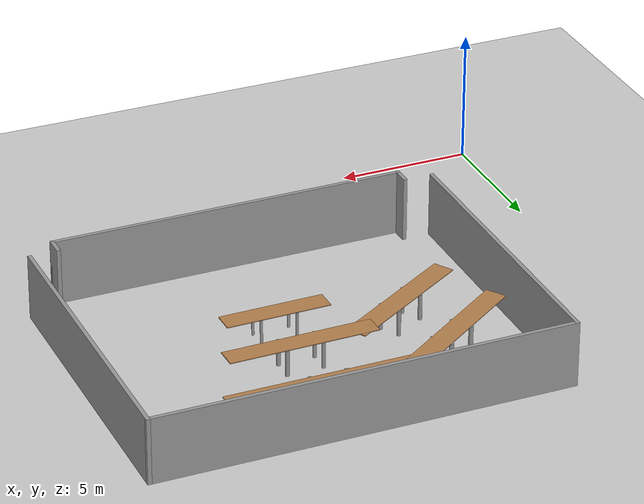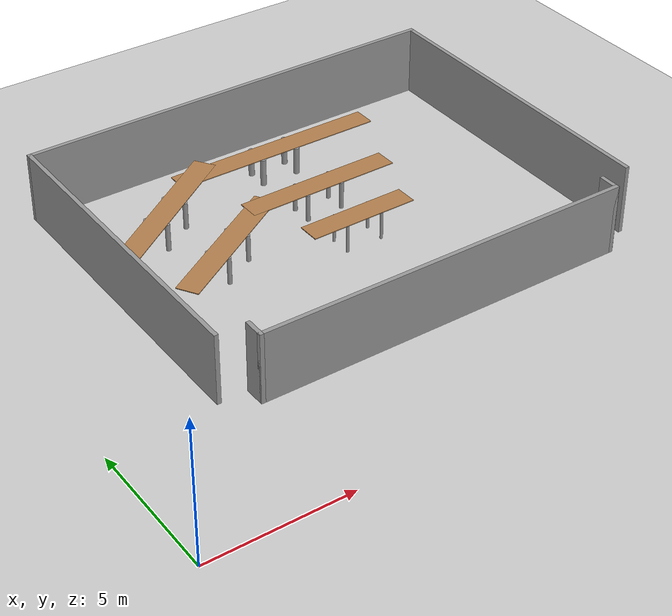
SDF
<sdf version="1.6">
 <world name="default">
  <model name="ground_plane">
   <static>1</static>
   <link name="link">
    <collision name="collision">
     <geometry><plane><normal>0 0 1</normal><size>100 100</size></plane></geometry>
     <surface>
      <contact><collide_bitmask>65535</collide_bitmask></contact>
      <friction><ode><mu>100</mu><mu2>50</mu2></ode></friction>
     </surface>
    </collision>
    <visual name="visual">
     <cast_shadows>0</cast_shadows>
     <geometry><plane><normal>0 0 1</normal><size>100 100</size></plane></geometry>
     <material>
      <script><uri>file://media/materials/scripts/gazebo.material</uri><name>Gazebo/Grey</name></script>
     </material>
    </visual>
   </link>
  </model>
  <model name="106">
   <pose>11.5722 10.6693 0 0 -0 0</pose>
   <link name="Wall_79">
    <collision name="Wall_79_Collision">
     <geometry><box><size>11.668 0.15 2.5</size></box></geometry>
     <pose>0 0 1.25 0 -0 0</pose>
    </collision>
    <visual name="Wall_79_Visual">
     <pose>0 0 1.25 0 -0 0</pose>
     <geometry><box><size>11.668 0.15 2.5</size></box></geometry>
     <material>
      <script><uri>file://media/materials/scripts/gazebo.material</uri><name>Gazebo/Grey</name></script>
      <ambient>1 1 1 1</ambient>
     </material>
     <meta><layer>0</layer></meta>
    </visual>
    <pose>7.759 0.349998 0 0 -0 1.5708</pose>
   </link>
   <link name="Wall_80">
    <collision name="Wall_80_Collision">
     <geometry><box><size>15.668 0.15 2.5</size></box></geometry>
     <pose>0 0 1.25 0 -0 0</pose>
    </collision>
    <visual name="Wall_80_Visual">
     <pose>0 0 1.25 0 -0 0</pose>
     <geometry><box><size>15.668 0.15 2.5</size></box></geometry>
     <material>
      <script><uri>file://media/materials/scripts/gazebo.material</uri><name>Gazebo/Grey</name></script>
      <ambient>1 1 1 1</ambient>
     </material>
     <meta><layer>0</layer></meta>
    </visual>
    <pose>1e-06 6.109 0 0 -0 3.14159</pose>
   </link>
   <link name="Wall_81">
    <collision name="Wall_81_Collision">
     <geometry><box><size>11.668 0.15 2.5</size></box></geometry>
     <pose>0 0 1.25 0 -0 0</pose>
    </collision>
    <visual name="Wall_81_Visual">
     <pose>0 0 1.25 0 -0 0</pose>
     <geometry><box><size>11.668 0.15 2.5</size></box></geometry>
     <material>
      <script><uri>file://media/materials/scripts/gazebo.material</uri><name>Gazebo/Grey</name></script>
      <ambient>1 1 1 1</ambient>
     </material>
     <meta><layer>0</layer></meta>
    </visual>
    <pose>-7.75877 0.349984 0 0 -0 -1.57076</pose>
   </link>
   <link name="Wall_84">
    <collision name="Wall_84_Collision">
     <geometry><box><size>13.532 0.15 2.5</size></box></geometry>
     <pose>0 0 1.25 0 -0 0</pose>
    </collision>
    <visual name="Wall_84_Visual">
     <pose>0 0 1.25 0 -0 0</pose>
     <geometry><box><size>13.532 0.15 2.5</size></box></geometry>
     <material>
      <script><uri>file://media/materials/scripts/gazebo.material</uri><name>Gazebo/Grey</name></script>
      <ambient>1 1 1 1</ambient>
     </material>
     <meta><layer>0</layer></meta>
    </visual>
    <pose>1e-06 -6.109 0 0 -0 0</pose>
   </link>
   <link name="Wall_87">
    <collision name="Wall_87_Collision">
     <geometry><box><size>0.75 0.15 2.5</size></box></geometry>
     <pose>0 0 1.25 0 -0 0</pose>
    </collision>
    <visual name="Wall_87_Visual">
     <pose>0 0 1.25 0 -0 0</pose>
     <geometry><box><size>0.75 0.15 2.5</size></box></geometry>
     <material>
      <script><uri>file://media/materials/scripts/gazebo.material</uri><name>Gazebo/Grey</name></script>
      <ambient>1 1 1 1</ambient>
     </material>
     <meta><layer>0</layer></meta>
    </visual>
    <pose>-6.691 -5.809 0 0 -0 1.5708</pose>
   </link>
   <link name="Wall_89">
    <collision name="Wall_89_Collision">
     <geometry><box><size>0.75 0.15 2.5</size></box></geometry>
     <pose>0 0 1.25 0 -0 0</pose>
    </collision>
    <visual name="Wall_89_Visual">
     <pose>0 0 1.25 0 -0 0</pose>
     <geometry><box><size>0.75 0.15 2.5</size></box></geometry>
     <material>
      <script><uri>file://media/materials/scripts/gazebo.material</uri><name>Gazebo/Grey</name></script>
      <ambient>1 1 1 1</ambient>
     </material>
     <meta><layer>0</layer></meta>
    </visual>
    <pose>6.691 -5.809 0 0 -0 1.5708</pose>
   </link>
   <static>1</static>
  </model>
  <model name="tables">
   <link name="link">
    <inertial>
     <inertia><ixx>0</ixx><ixy>0</ixy><ixz>0</ixz><iyy>0</iyy><iyz>0</iyz><izz>0</izz></inertia>
     <mass>0</mass>
    </inertial>
    <visual name="visual1">
     <pose>0 0 1 0 -0 0</pose>
     <geometry><box><size>7.69024 0.8 0.03</size></box></geometry>
     <material>
      <script><uri>file://media/materials/scripts/gazebo.material</uri><name>Gazebo/Wood</name></script>
      <shader type="pixel"/>
     </material>
    </visual>
    <visual name="front_left_leg">
     <pose>0.68 0.38 0.5 0 -0 0</pose>
     <geometry><cylinder><radius>0.102537</radius><length>1</length></cylinder></geometry>
     <material>
      <script><uri>file://media/materials/scripts/gazebo.material</uri><name>Gazebo/Grey</name></script>
      <shader type="pixel"/>
     </material>
    </visual>
    <visual name="front_right_leg">
     <pose>0.68 -0.38 0.5 0 -0 0</pose>
     <geometry><cylinder><radius>0.102537</radius><length>1</length></cylinder></geometry>
     <material>
      <script><uri>file://media/materials/scripts/gazebo.material</uri><name>Gazebo/Grey</name></script>
      <shader type="pixel"/>
     </material>
    </visual>
    <visual name="back_right_leg">
     <pose>-0.68 -0.38 0.5 0 -0 0</pose>
     <geometry><cylinder><radius>0.102537</radius><length>1</length></cylinder></geometry>
     <material>
      <script><uri>file://media/materials/scripts/gazebo.material</uri><name>Gazebo/Grey</name></script>
      <shader type="pixel"/>
     </material>
    </visual>
    <visual name="back_left_leg">
     <pose>-0.68 0.38 0.5 0 -0 0</pose>
     <geometry><cylinder><radius>0.102537</radius><length>1</length></cylinder></geometry>
     <material>
      <script><uri>file://media/materials/scripts/gazebo.material</uri><name>Gazebo/Grey</name></script>
      <shader type="pixel"/>
     </material>
    </visual>
    <collision name="surface">
     <pose>0 0 1 0 -0 0</pose>
     <geometry><box><size>7.69024 0.8 0.03</size></box></geometry>
     <surface>
      <friction>
       <ode><mu>0.6</mu><mu2>0.6</mu2><fdir1>0 0 0</fdir1><slip1>0</slip1><slip2>0</slip2></ode>
       <torsional>
        <coefficient>1</coefficient>
        <patch_radius>0</patch_radius>
        <surface_radius>0</surface_radius>
        <use_patch_radius>1</use_patch_radius>
        <ode><slip>0</slip></ode>
       </torsional>
      </friction>
      <bounce><restitution_coefficient>0</restitution_coefficient><threshold>1e+06</threshold></bounce>
      <contact>
       <collide_without_contact>0</collide_without_contact>
       <collide_without_contact_bitmask>1</collide_without_contact_bitmask>
       <collide_bitmask>1</collide_bitmask>
       <ode>
        <soft_cfm>0</soft_cfm>
        <soft_erp>0.2</soft_erp>
        <kp>1e+13</kp>
        <kd>1</kd>
        <max_vel>0.01</max_vel>
        <min_depth>0</min_depth>
       </ode>
       <bullet>
        <split_impulse>1</split_impulse>
        <split_impulse_penetration_threshold>-0.01</split_impulse_penetration_threshold>
        <soft_cfm>0</soft_cfm>
        <soft_erp>0.2</soft_erp>
        <kp>1e+13</kp>
        <kd>1</kd>
       </bullet>
      </contact>
     </surface>
    </collision>
    <collision name="front_left_leg">
     <pose>0.68 0.38 0.5 0 -0 0</pose>
     <geometry><cylinder><radius>0.102537</radius><length>1</length></cylinder></geometry>
     <surface>
      <friction>
       <ode><mu>1</mu><mu2>1</mu2><fdir1>0 0 0</fdir1><slip1>0</slip1><slip2>0</slip2></ode>
       <torsional>
        <coefficient>1</coefficient>
        <patch_radius>0</patch_radius>
        <surface_radius>0</surface_radius>
        <use_patch_radius>1</use_patch_radius>
        <ode><slip>0</slip></ode>
       </torsional>
      </friction>
      <bounce><restitution_coefficient>0</restitution_coefficient><threshold>1e+06</threshold></bounce>
      <contact>
       <collide_without_contact>0</collide_without_contact>
       <collide_without_contact_bitmask>1</collide_without_contact_bitmask>
       <collide_bitmask>1</collide_bitmask>
       <ode>
        <soft_cfm>0</soft_cfm>
        <soft_erp>0.2</soft_erp>
        <kp>1e+13</kp>
        <kd>1</kd>
        <max_vel>0.01</max_vel>
        <min_depth>0</min_depth>
       </ode>
       <bullet>
        <split_impulse>1</split_impulse>
        <split_impulse_penetration_threshold>-0.01</split_impulse_penetration_threshold>
        <soft_cfm>0</soft_cfm>
        <soft_erp>0.2</soft_erp>
        <kp>1e+13</kp>
        <kd>1</kd>
       </bullet>
      </contact>
     </surface>
    </collision>
    <collision name="front_right_leg">
     <pose>0.68 -0.38 0.5 0 -0 0</pose>
     <geometry><cylinder><radius>0.102537</radius><length>1</length></cylinder></geometry>
     <surface>
      <friction>
       <ode><mu>1</mu><mu2>1</mu2><fdir1>0 0 0</fdir1><slip1>0</slip1><slip2>0</slip2></ode>
       <torsional>
        <coefficient>1</coefficient>
        <patch_radius>0</patch_radius>
        <surface_radius>0</surface_radius>
        <use_patch_radius>1</use_patch_radius>
        <ode><slip>0</slip></ode>
       </torsional>
      </friction>
      <bounce><restitution_coefficient>0</restitution_coefficient><threshold>1e+06</threshold></bounce>
      <contact>
       <collide_without_contact>0</collide_without_contact>
       <collide_without_contact_bitmask>1</collide_without_contact_bitmask>
       <collide_bitmask>1</collide_bitmask>
       <ode>
        <soft_cfm>0</soft_cfm>
        <soft_erp>0.2</soft_erp>
        <kp>1e+13</kp>
        <kd>1</kd>
        <max_vel>0.01</max_vel>
        <min_depth>0</min_depth>
       </ode>
       <bullet>
        <split_impulse>1</split_impulse>
        <split_impulse_penetration_threshold>-0.01</split_impulse_penetration_threshold>
        <soft_cfm>0</soft_cfm>
        <soft_erp>0.2</soft_erp>
        <kp>1e+13</kp>
        <kd>1</kd>
       </bullet>
      </contact>
     </surface>
    </collision>
    <collision name="back_right_leg">
     <pose>-0.68 -0.38 0.5 0 -0 0</pose>
     <geometry><cylinder><radius>0.102537</radius><length>1</length></cylinder></geometry>
     <surface>
      <friction>
       <ode><mu>1</mu><mu2>1</mu2><fdir1>0 0 0</fdir1><slip1>0</slip1><slip2>0</slip2></ode>
       <torsional>
        <coefficient>1</coefficient>
        <patch_radius>0</patch_radius>
        <surface_radius>0</surface_radius>
        <use_patch_radius>1</use_patch_radius>
        <ode><slip>0</slip></ode>
       </torsional>
      </friction>
      <bounce><restitution_coefficient>0</restitution_coefficient><threshold>1e+06</threshold></bounce>
      <contact>
       <collide_without_contact>0</collide_without_contact>
       <collide_without_contact_bitmask>1</collide_without_contact_bitmask>
       <collide_bitmask>1</collide_bitmask>
       <ode>
        <soft_cfm>0</soft_cfm>
        <soft_erp>0.2</soft_erp>
        <kp>1e+13</kp>
        <kd>1</kd>
        <max_vel>0.01</max_vel>
        <min_depth>0</min_depth>
       </ode>
       <bullet>
        <split_impulse>1</split_impulse>
        <split_impulse_penetration_threshold>-0.01</split_impulse_penetration_threshold>
        <soft_cfm>0</soft_cfm>
        <soft_erp>0.2</soft_erp>
        <kp>1e+13</kp>
        <kd>1</kd>
       </bullet>
      </contact>
     </surface>
    </collision>
    <collision name="back_left_leg">
     <pose>-0.68 0.38 0.5 0 -0 0</pose>
     <geometry><cylinder><radius>0.102537</radius><length>1</length></cylinder></geometry>
     <surface>
      <friction>
       <ode><mu>1</mu><mu2>1</mu2><fdir1>0 0 0</fdir1><slip1>0</slip1><slip2>0</slip2></ode>
       <torsional>
        <coefficient>1</coefficient>
        <patch_radius>0</patch_radius>
        <surface_radius>0</surface_radius>
        <use_patch_radius>1</use_patch_radius>
        <ode><slip>0</slip></ode>
       </torsional>
      </friction>
      <bounce><restitution_coefficient>0</restitution_coefficient><threshold>1e+06</threshold></bounce>
      <contact>
       <collide_without_contact>0</collide_without_contact>
       <collide_without_contact_bitmask>1</collide_without_contact_bitmask>
       <collide_bitmask>1</collide_bitmask>
       <ode>
        <soft_cfm>0</soft_cfm>
        <soft_erp>0.2</soft_erp>
        <kp>1e+13</kp>
        <kd>1</kd>
        <max_vel>0.01</max_vel>
        <min_depth>0</min_depth>
       </ode>
       <bullet>
        <split_impulse>1</split_impulse>
        <split_impulse_penetration_threshold>-0.01</split_impulse_penetration_threshold>
        <soft_cfm>0</soft_cfm>
        <soft_erp>0.2</soft_erp>
        <kp>1e+13</kp>
        <kd>1</kd>
       </bullet>
      </contact>
     </surface>
    </collision>
   </link>
   <link name="link_clone_clone">
    <inertial>
     <inertia><ixx>0</ixx><ixy>0</ixy><ixz>0</ixz><iyy>0</iyy><iyz>0</iyz><izz>0</izz></inertia>
     <mass>0</mass>
    </inertial>
    <pose>-5.01516 -1.24723 0 0 -0 0.606932</pose>
    <visual name="back_right_leg">
     <pose>-0.68 -0.38 0.5 0 -0 0</pose>
     <geometry><cylinder><radius>0.0838342</radius><length>1</length></cylinder></geometry>
     <material>
      <script><uri>file://media/materials/scripts/gazebo.material</uri><name>Gazebo/Grey</name></script>
      <shader type="pixel"/>
     </material>
    </visual>
    <visual name="back_left_leg">
     <pose>-0.68 0.38 0.5 0 -0 0</pose>
     <geometry><cylinder><radius>0.0838342</radius><length>1</length></cylinder></geometry>
     <material>
      <script><uri>file://media/materials/scripts/gazebo.material</uri><name>Gazebo/Grey</name></script>
      <shader type="pixel"/>
     </material>
    </visual>
    <visual name="front_right_leg">
     <pose>0.68 -0.38 0.5 0 -0 0</pose>
     <geometry><cylinder><radius>0.0838342</radius><length>1</length></cylinder></geometry>
     <material>
      <script><uri>file://media/materials/scripts/gazebo.material</uri><name>Gazebo/Grey</name></script>
      <shader type="pixel"/>
     </material>
    </visual>
    <visual name="front_left_leg">
     <pose>0.68 0.38 0.5 0 -0 0</pose>
     <geometry><cylinder><radius>0.0838342</radius><length>1</length></cylinder></geometry>
     <material>
      <script><uri>file://media/materials/scripts/gazebo.material</uri><name>Gazebo/Grey</name></script>
      <shader type="pixel"/>
     </material>
    </visual>
    <visual name="visual1">
     <pose>0 0 1 0 -0 0</pose>
     <geometry><box><size>6.28754 0.8 0.03</size></box></geometry>
     <material>
      <script><uri>file://media/materials/scripts/gazebo.material</uri><name>Gazebo/Wood</name></script>
      <shader type="pixel"/>
     </material>
    </visual>
    <collision name="surface">
     <pose>0 0 1 0 -0 0</pose>
     <geometry><box><size>6.28754 0.8 0.03</size></box></geometry>
     <surface>
      <friction>
       <ode><mu>1</mu><mu2>1</mu2><fdir1>0 0 0</fdir1><slip1>0</slip1><slip2>0</slip2></ode>
       <torsional>
        <coefficient>1</coefficient>
        <patch_radius>0</patch_radius>
        <surface_radius>0</surface_radius>
        <use_patch_radius>1</use_patch_radius>
        <ode><slip>0</slip></ode>
       </torsional>
      </friction>
      <bounce><restitution_coefficient>0</restitution_coefficient><threshold>1e+06</threshold></bounce>
      <contact>
       <collide_without_contact>0</collide_without_contact>
       <collide_without_contact_bitmask>1</collide_without_contact_bitmask>
       <collide_bitmask>1</collide_bitmask>
       <ode>
        <soft_cfm>0</soft_cfm>
        <soft_erp>0.2</soft_erp>
        <kp>1e+13</kp>
        <kd>1</kd>
        <max_vel>0.01</max_vel>
        <min_depth>0</min_depth>
       </ode>
       <bullet>
        <split_impulse>1</split_impulse>
        <split_impulse_penetration_threshold>-0.01</split_impulse_penetration_threshold>
        <soft_cfm>0</soft_cfm>
        <soft_erp>0.2</soft_erp>
        <kp>1e+13</kp>
        <kd>1</kd>
       </bullet>
      </contact>
     </surface>
    </collision>
    <collision name="front_left_leg_0">
     <pose>0.68 0.38 0.5 0 -0 0</pose>
     <geometry><cylinder><radius>0.083834</radius><length>1</length></cylinder></geometry>
     <surface>
      <friction>
       <ode><mu>1</mu><mu2>1</mu2><fdir1>0 0 0</fdir1><slip1>0</slip1><slip2>0</slip2></ode>
       <torsional>
        <coefficient>1</coefficient>
        <patch_radius>0</patch_radius>
        <surface_radius>0</surface_radius>
        <use_patch_radius>1</use_patch_radius>
        <ode><slip>0</slip></ode>
       </torsional>
      </friction>
      <bounce><restitution_coefficient>0</restitution_coefficient><threshold>1e+06</threshold></bounce>
      <contact>
       <collide_without_contact>0</collide_without_contact>
       <collide_without_contact_bitmask>1</collide_without_contact_bitmask>
       <collide_bitmask>1</collide_bitmask>
       <ode>
        <soft_cfm>0</soft_cfm>
        <soft_erp>0.2</soft_erp>
        <kp>1e+13</kp>
        <kd>1</kd>
        <max_vel>0.01</max_vel>
        <min_depth>0</min_depth>
       </ode>
       <bullet>
        <split_impulse>1</split_impulse>
        <split_impulse_penetration_threshold>-0.01</split_impulse_penetration_threshold>
        <soft_cfm>0</soft_cfm>
        <soft_erp>0.2</soft_erp>
        <kp>1e+13</kp>
        <kd>1</kd>
       </bullet>
      </contact>
     </surface>
    </collision>
    <collision name="front_right_leg_0">
     <pose>0.68 -0.38 0.5 0 -0 0</pose>
     <geometry><cylinder><radius>0.083834</radius><length>1</length></cylinder></geometry>
     <surface>
      <friction>
       <ode><mu>1</mu><mu2>1</mu2><fdir1>0 0 0</fdir1><slip1>0</slip1><slip2>0</slip2></ode>
       <torsional>
        <coefficient>1</coefficient>
        <patch_radius>0</patch_radius>
        <surface_radius>0</surface_radius>
        <use_patch_radius>1</use_patch_radius>
        <ode><slip>0</slip></ode>
       </torsional>
      </friction>
      <bounce><restitution_coefficient>0</restitution_coefficient><threshold>1e+06</threshold></bounce>
      <contact>
       <collide_without_contact>0</collide_without_contact>
       <collide_without_contact_bitmask>1</collide_without_contact_bitmask>
       <collide_bitmask>1</collide_bitmask>
       <ode>
        <soft_cfm>0</soft_cfm>
        <soft_erp>0.2</soft_erp>
        <kp>1e+13</kp>
        <kd>1</kd>
        <max_vel>0.01</max_vel>
        <min_depth>0</min_depth>
       </ode>
       <bullet>
        <split_impulse>1</split_impulse>
        <split_impulse_penetration_threshold>-0.01</split_impulse_penetration_threshold>
        <soft_cfm>0</soft_cfm>
        <soft_erp>0.2</soft_erp>
        <kp>1e+13</kp>
        <kd>1</kd>
       </bullet>
      </contact>
     </surface>
    </collision>
    <collision name="back_left_leg_0">
     <pose>-0.68 0.38 0.5 0 -0 0</pose>
     <geometry><cylinder><radius>0.083834</radius><length>1</length></cylinder></geometry>
     <surface>
      <friction>
       <ode><mu>1</mu><mu2>1</mu2><fdir1>0 0 0</fdir1><slip1>0</slip1><slip2>0</slip2></ode>
       <torsional>
        <coefficient>1</coefficient>
        <patch_radius>0</patch_radius>
        <surface_radius>0</surface_radius>
        <use_patch_radius>1</use_patch_radius>
        <ode><slip>0</slip></ode>
       </torsional>
      </friction>
      <bounce><restitution_coefficient>0</restitution_coefficient><threshold>1e+06</threshold></bounce>
      <contact>
       <collide_without_contact>0</collide_without_contact>
       <collide_without_contact_bitmask>1</collide_without_contact_bitmask>
       <collide_bitmask>1</collide_bitmask>
       <ode>
        <soft_cfm>0</soft_cfm>
        <soft_erp>0.2</soft_erp>
        <kp>1e+13</kp>
        <kd>1</kd>
        <max_vel>0.01</max_vel>
        <min_depth>0</min_depth>
       </ode>
       <bullet>
        <split_impulse>1</split_impulse>
        <split_impulse_penetration_threshold>-0.01</split_impulse_penetration_threshold>
        <soft_cfm>0</soft_cfm>
        <soft_erp>0.2</soft_erp>
        <kp>1e+13</kp>
        <kd>1</kd>
       </bullet>
      </contact>
     </surface>
    </collision>
    <collision name="back_right_leg_0">
     <pose>-0.68 -0.38 0.5 0 -0 0</pose>
     <geometry><cylinder><radius>0.083834</radius><length>1</length></cylinder></geometry>
     <surface>
      <friction>
       <ode><mu>1</mu><mu2>1</mu2><fdir1>0 0 0</fdir1><slip1>0</slip1><slip2>0</slip2></ode>
       <torsional>
        <coefficient>1</coefficient>
        <patch_radius>0</patch_radius>
        <surface_radius>0</surface_radius>
        <use_patch_radius>1</use_patch_radius>
        <ode><slip>0</slip></ode>
       </torsional>
      </friction>
      <bounce><restitution_coefficient>0</restitution_coefficient><threshold>1e+06</threshold></bounce>
      <contact>
       <collide_without_contact>0</collide_without_contact>
       <collide_without_contact_bitmask>1</collide_without_contact_bitmask>
       <collide_bitmask>1</collide_bitmask>
       <ode>
        <soft_cfm>0</soft_cfm>
        <soft_erp>0.2</soft_erp>
        <kp>1e+13</kp>
        <kd>1</kd>
        <max_vel>0.01</max_vel>
        <min_depth>0</min_depth>
       </ode>
       <bullet>
        <split_impulse>1</split_impulse>
        <split_impulse_penetration_threshold>-0.01</split_impulse_penetration_threshold>
        <soft_cfm>0</soft_cfm>
        <soft_erp>0.2</soft_erp>
        <kp>1e+13</kp>
        <kd>1</kd>
       </bullet>
      </contact>
     </surface>
    </collision>
   </link>
   <link name="link_clone_clone_0">
    <inertial>
     <inertia><ixx>0</ixx><ixy>0</ixy><ixz>0</ixz><iyy>0</iyy><iyz>0</iyz><izz>0</izz></inertia>
     <mass>0</mass>
    </inertial>
    <pose>0.01366 -2.70424 0 0 -0 0.010098</pose>
    <visual name="back_right_leg">
     <pose>-0.68 -0.38 0.5 0 -0 0</pose>
     <geometry><cylinder><radius>0.0748358</radius><length>1</length></cylinder></geometry>
     <material>
      <script><uri>file://media/materials/scripts/gazebo.material</uri><name>Gazebo/Grey</name></script>
      <shader type="pixel"/>
     </material>
    </visual>
    <visual name="back_left_leg">
     <pose>-0.68 0.38 0.5 0 -0 0</pose>
     <geometry><cylinder><radius>0.0748358</radius><length>1</length></cylinder></geometry>
     <material>
      <script><uri>file://media/materials/scripts/gazebo.material</uri><name>Gazebo/Grey</name></script>
      <shader type="pixel"/>
     </material>
    </visual>
    <visual name="front_left_leg">
     <pose>0.68 0.38 0.5 0 -0 0</pose>
     <geometry><cylinder><radius>0.0748358</radius><length>1</length></cylinder></geometry>
     <material>
      <script><uri>file://media/materials/scripts/gazebo.material</uri><name>Gazebo/Grey</name></script>
      <shader type="pixel"/>
     </material>
    </visual>
    <visual name="front_right_leg">
     <pose>0.68 -0.38 0.5 0 -0 0</pose>
     <geometry><cylinder><radius>0.0748358</radius><length>1</length></cylinder></geometry>
     <material>
      <script><uri>file://media/materials/scripts/gazebo.material</uri><name>Gazebo/Grey</name></script>
      <shader type="pixel"/>
     </material>
    </visual>
    <visual name="visual1">
     <pose>0 0 1 0 -0 0</pose>
     <geometry><box><size>5.60463 0.8 0.03</size></box></geometry>
     <material>
      <script><uri>file://media/materials/scripts/gazebo.material</uri><name>Gazebo/Wood</name></script>
      <shader type="pixel"/>
     </material>
    </visual>
    <collision name="surface">
     <pose>0 0 1 0 -0 0</pose>
     <geometry><box><size>5.60463 0.8 0.03</size></box></geometry>
     <surface>
      <friction>
       <ode><mu>1</mu><mu2>1</mu2><fdir1>0 0 0</fdir1><slip1>0</slip1><slip2>0</slip2></ode>
       <torsional>
        <coefficient>1</coefficient>
        <patch_radius>0</patch_radius>
        <surface_radius>0</surface_radius>
        <use_patch_radius>1</use_patch_radius>
        <ode><slip>0</slip></ode>
       </torsional>
      </friction>
      <bounce><restitution_coefficient>0</restitution_coefficient><threshold>1e+06</threshold></bounce>
      <contact>
       <collide_without_contact>0</collide_without_contact>
       <collide_without_contact_bitmask>1</collide_without_contact_bitmask>
       <collide_bitmask>1</collide_bitmask>
       <ode>
        <soft_cfm>0</soft_cfm>
        <soft_erp>0.2</soft_erp>
        <kp>1e+13</kp>
        <kd>1</kd>
        <max_vel>0.01</max_vel>
        <min_depth>0</min_depth>
       </ode>
       <bullet>
        <split_impulse>1</split_impulse>
        <split_impulse_penetration_threshold>-0.01</split_impulse_penetration_threshold>
        <soft_cfm>0</soft_cfm>
        <soft_erp>0.2</soft_erp>
        <kp>1e+13</kp>
        <kd>1</kd>
       </bullet>
      </contact>
     </surface>
    </collision>
    <collision name="front_left_leg_0">
     <pose>0.68 0.38 0.5 0 -0 0</pose>
     <geometry><cylinder><radius>0.074836</radius><length>1</length></cylinder></geometry>
     <surface>
      <friction>
       <ode><mu>1</mu><mu2>1</mu2><fdir1>0 0 0</fdir1><slip1>0</slip1><slip2>0</slip2></ode>
       <torsional>
        <coefficient>1</coefficient>
        <patch_radius>0</patch_radius>
        <surface_radius>0</surface_radius>
        <use_patch_radius>1</use_patch_radius>
        <ode><slip>0</slip></ode>
       </torsional>
      </friction>
      <bounce><restitution_coefficient>0</restitution_coefficient><threshold>1e+06</threshold></bounce>
      <contact>
       <collide_without_contact>0</collide_without_contact>
       <collide_without_contact_bitmask>1</collide_without_contact_bitmask>
       <collide_bitmask>1</collide_bitmask>
       <ode>
        <soft_cfm>0</soft_cfm>
        <soft_erp>0.2</soft_erp>
        <kp>1e+13</kp>
        <kd>1</kd>
        <max_vel>0.01</max_vel>
        <min_depth>0</min_depth>
       </ode>
       <bullet>
        <split_impulse>1</split_impulse>
        <split_impulse_penetration_threshold>-0.01</split_impulse_penetration_threshold>
        <soft_cfm>0</soft_cfm>
        <soft_erp>0.2</soft_erp>
        <kp>1e+13</kp>
        <kd>1</kd>
       </bullet>
      </contact>
     </surface>
    </collision>
    <collision name="back_left_leg_0">
     <pose>-0.68 0.38 0.5 0 -0 0</pose>
     <geometry><cylinder><radius>0.074836</radius><length>1</length></cylinder></geometry>
     <surface>
      <friction>
       <ode><mu>1</mu><mu2>1</mu2><fdir1>0 0 0</fdir1><slip1>0</slip1><slip2>0</slip2></ode>
       <torsional>
        <coefficient>1</coefficient>
        <patch_radius>0</patch_radius>
        <surface_radius>0</surface_radius>
        <use_patch_radius>1</use_patch_radius>
        <ode><slip>0</slip></ode>
       </torsional>
      </friction>
      <bounce><restitution_coefficient>0</restitution_coefficient><threshold>1e+06</threshold></bounce>
      <contact>
       <collide_without_contact>0</collide_without_contact>
       <collide_without_contact_bitmask>1</collide_without_contact_bitmask>
       <collide_bitmask>1</collide_bitmask>
       <ode>
        <soft_cfm>0</soft_cfm>
        <soft_erp>0.2</soft_erp>
        <kp>1e+13</kp>
        <kd>1</kd>
        <max_vel>0.01</max_vel>
        <min_depth>0</min_depth>
       </ode>
       <bullet>
        <split_impulse>1</split_impulse>
        <split_impulse_penetration_threshold>-0.01</split_impulse_penetration_threshold>
        <soft_cfm>0</soft_cfm>
        <soft_erp>0.2</soft_erp>
        <kp>1e+13</kp>
        <kd>1</kd>
       </bullet>
      </contact>
     </surface>
    </collision>
    <collision name="front_right_leg_0">
     <pose>0.68 -0.38 0.5 0 -0 0</pose>
     <geometry><cylinder><radius>0.074836</radius><length>1</length></cylinder></geometry>
     <surface>
      <friction>
       <ode><mu>1</mu><mu2>1</mu2><fdir1>0 0 0</fdir1><slip1>0</slip1><slip2>0</slip2></ode>
       <torsional>
        <coefficient>1</coefficient>
        <patch_radius>0</patch_radius>
        <surface_radius>0</surface_radius>
        <use_patch_radius>1</use_patch_radius>
        <ode><slip>0</slip></ode>
       </torsional>
      </friction>
      <bounce><restitution_coefficient>0</restitution_coefficient><threshold>1e+06</threshold></bounce>
      <contact>
       <collide_without_contact>0</collide_without_contact>
       <collide_without_contact_bitmask>1</collide_without_contact_bitmask>
       <collide_bitmask>1</collide_bitmask>
       <ode>
        <soft_cfm>0</soft_cfm>
        <soft_erp>0.2</soft_erp>
        <kp>1e+13</kp>
        <kd>1</kd>
        <max_vel>0.01</max_vel>
        <min_depth>0</min_depth>
       </ode>
       <bullet>
        <split_impulse>1</split_impulse>
        <split_impulse_penetration_threshold>-0.01</split_impulse_penetration_threshold>
        <soft_cfm>0</soft_cfm>
        <soft_erp>0.2</soft_erp>
        <kp>1e+13</kp>
        <kd>1</kd>
       </bullet>
      </contact>
     </surface>
    </collision>
    <collision name="back_right_leg_0">
     <pose>-0.68 -0.38 0.5 0 -0 0</pose>
     <geometry><cylinder><radius>0.074836</radius><length>1</length></cylinder></geometry>
     <surface>
      <friction>
       <ode><mu>1</mu><mu2>1</mu2><fdir1>0 0 0</fdir1><slip1>0</slip1><slip2>0</slip2></ode>
       <torsional>
        <coefficient>1</coefficient>
        <patch_radius>0</patch_radius>
        <surface_radius>0</surface_radius>
        <use_patch_radius>1</use_patch_radius>
        <ode><slip>0</slip></ode>
       </torsional>
      </friction>
      <bounce><restitution_coefficient>0</restitution_coefficient><threshold>1e+06</threshold></bounce>
      <contact>
       <collide_without_contact>0</collide_without_contact>
       <collide_without_contact_bitmask>1</collide_without_contact_bitmask>
       <collide_bitmask>1</collide_bitmask>
       <ode>
        <soft_cfm>0</soft_cfm>
        <soft_erp>0.2</soft_erp>
        <kp>1e+13</kp>
        <kd>1</kd>
        <max_vel>0.01</max_vel>
        <min_depth>0</min_depth>
       </ode>
       <bullet>
        <split_impulse>1</split_impulse>
        <split_impulse_penetration_threshold>-0.01</split_impulse_penetration_threshold>
        <soft_cfm>0</soft_cfm>
        <soft_erp>0.2</soft_erp>
        <kp>1e+13</kp>
        <kd>1</kd>
       </bullet>
      </contact>
     </surface>
    </collision>
   </link>
   <link name="link_clone_clone_0_clone_0">
    <inertial>
     <inertia><ixx>0</ixx><ixy>0</ixy><ixz>0</ixz><iyy>0</iyy><iyz>0</iyz><izz>0</izz></inertia>
     <mass>0</mass>
    </inertial>
    <pose>-4.32148 -3.96287 0 0 -0 0.557271</pose>
    <visual name="back_right_leg">
     <pose>-0.68 -0.38 0.5 0 -0 0</pose>
     <geometry><cylinder><radius>0.0748358</radius><length>1</length></cylinder></geometry>
     <material>
      <script><uri>file://media/materials/scripts/gazebo.material</uri><name>Gazebo/Grey</name></script>
      <shader type="pixel"/>
     </material>
    </visual>
    <visual name="back_left_leg">
     <pose>-0.68 0.38 0.5 0 -0 0</pose>
     <geometry><cylinder><radius>0.0748358</radius><length>1</length></cylinder></geometry>
     <material>
      <script><uri>file://media/materials/scripts/gazebo.material</uri><name>Gazebo/Grey</name></script>
      <shader type="pixel"/>
     </material>
    </visual>
    <visual name="front_left_leg">
     <pose>0.68 0.38 0.5 0 -0 0</pose>
     <geometry><cylinder><radius>0.0748358</radius><length>1</length></cylinder></geometry>
     <material>
      <script><uri>file://media/materials/scripts/gazebo.material</uri><name>Gazebo/Grey</name></script>
      <shader type="pixel"/>
     </material>
    </visual>
    <visual name="front_right_leg">
     <pose>0.68 -0.38 0.5 0 -0 0</pose>
     <geometry><cylinder><radius>0.0748358</radius><length>1</length></cylinder></geometry>
     <material>
      <script><uri>file://media/materials/scripts/gazebo.material</uri><name>Gazebo/Grey</name></script>
      <shader type="pixel"/>
     </material>
    </visual>
    <visual name="visual1">
     <pose>0 0 1 0 -0 0</pose>
     <geometry><box><size>5.60463 0.8 0.03</size></box></geometry>
     <material>
      <script><uri>file://media/materials/scripts/gazebo.material</uri><name>Gazebo/Wood</name></script>
      <shader type="pixel"/>
     </material>
    </visual>
    <collision name="surface">
     <pose>0 0 1 0 -0 0</pose>
     <geometry><box><size>5.60463 0.8 0.03</size></box></geometry>
     <surface>
      <friction>
       <ode><mu>1</mu><mu2>1</mu2><fdir1>0 0 0</fdir1><slip1>0</slip1><slip2>0</slip2></ode>
       <torsional>
        <coefficient>1</coefficient>
        <patch_radius>0</patch_radius>
        <surface_radius>0</surface_radius>
        <use_patch_radius>1</use_patch_radius>
        <ode><slip>0</slip></ode>
       </torsional>
      </friction>
      <bounce><restitution_coefficient>0</restitution_coefficient><threshold>1e+06</threshold></bounce>
      <contact>
       <collide_without_contact>0</collide_without_contact>
       <collide_without_contact_bitmask>1</collide_without_contact_bitmask>
       <collide_bitmask>1</collide_bitmask>
       <ode>
        <soft_cfm>0</soft_cfm>
        <soft_erp>0.2</soft_erp>
        <kp>1e+13</kp>
        <kd>1</kd>
        <max_vel>0.01</max_vel>
        <min_depth>0</min_depth>
       </ode>
       <bullet>
        <split_impulse>1</split_impulse>
        <split_impulse_penetration_threshold>-0.01</split_impulse_penetration_threshold>
        <soft_cfm>0</soft_cfm>
        <soft_erp>0.2</soft_erp>
        <kp>1e+13</kp>
        <kd>1</kd>
       </bullet>
      </contact>
     </surface>
    </collision>
    <collision name="front_left_leg_0">
     <pose>0.68 0.38 0.5 0 -0 0</pose>
     <geometry><cylinder><radius>0.074836</radius><length>1</length></cylinder></geometry>
     <surface>
      <friction>
       <ode><mu>1</mu><mu2>1</mu2><fdir1>0 0 0</fdir1><slip1>0</slip1><slip2>0</slip2></ode>
       <torsional>
        <coefficient>1</coefficient>
        <patch_radius>0</patch_radius>
        <surface_radius>0</surface_radius>
        <use_patch_radius>1</use_patch_radius>
        <ode><slip>0</slip></ode>
       </torsional>
      </friction>
      <bounce><restitution_coefficient>0</restitution_coefficient><threshold>1e+06</threshold></bounce>
      <contact>
       <collide_without_contact>0</collide_without_contact>
       <collide_without_contact_bitmask>1</collide_without_contact_bitmask>
       <collide_bitmask>1</collide_bitmask>
       <ode>
        <soft_cfm>0</soft_cfm>
        <soft_erp>0.2</soft_erp>
        <kp>1e+13</kp>
        <kd>1</kd>
        <max_vel>0.01</max_vel>
        <min_depth>0</min_depth>
       </ode>
       <bullet>
        <split_impulse>1</split_impulse>
        <split_impulse_penetration_threshold>-0.01</split_impulse_penetration_threshold>
        <soft_cfm>0</soft_cfm>
        <soft_erp>0.2</soft_erp>
        <kp>1e+13</kp>
        <kd>1</kd>
       </bullet>
      </contact>
     </surface>
    </collision>
    <collision name="back_left_leg_0">
     <pose>-0.68 0.38 0.5 0 -0 0</pose>
     <geometry><cylinder><radius>0.074836</radius><length>1</length></cylinder></geometry>
     <surface>
      <friction>
       <ode><mu>1</mu><mu2>1</mu2><fdir1>0 0 0</fdir1><slip1>0</slip1><slip2>0</slip2></ode>
       <torsional>
        <coefficient>1</coefficient>
        <patch_radius>0</patch_radius>
        <surface_radius>0</surface_radius>
        <use_patch_radius>1</use_patch_radius>
        <ode><slip>0</slip></ode>
       </torsional>
      </friction>
      <bounce><restitution_coefficient>0</restitution_coefficient><threshold>1e+06</threshold></bounce>
      <contact>
       <collide_without_contact>0</collide_without_contact>
       <collide_without_contact_bitmask>1</collide_without_contact_bitmask>
       <collide_bitmask>1</collide_bitmask>
       <ode>
        <soft_cfm>0</soft_cfm>
        <soft_erp>0.2</soft_erp>
        <kp>1e+13</kp>
        <kd>1</kd>
        <max_vel>0.01</max_vel>
        <min_depth>0</min_depth>
       </ode>
       <bullet>
        <split_impulse>1</split_impulse>
        <split_impulse_penetration_threshold>-0.01</split_impulse_penetration_threshold>
        <soft_cfm>0</soft_cfm>
        <soft_erp>0.2</soft_erp>
        <kp>1e+13</kp>
        <kd>1</kd>
       </bullet>
      </contact>
     </surface>
    </collision>
    <collision name="front_right_leg_0">
     <pose>0.68 -0.38 0.5 0 -0 0</pose>
     <geometry><cylinder><radius>0.074836</radius><length>1</length></cylinder></geometry>
     <surface>
      <friction>
       <ode><mu>1</mu><mu2>1</mu2><fdir1>0 0 0</fdir1><slip1>0</slip1><slip2>0</slip2></ode>
       <torsional>
        <coefficient>1</coefficient>
        <patch_radius>0</patch_radius>
        <surface_radius>0</surface_radius>
        <use_patch_radius>1</use_patch_radius>
        <ode><slip>0</slip></ode>
       </torsional>
      </friction>
      <bounce><restitution_coefficient>0</restitution_coefficient><threshold>1e+06</threshold></bounce>
      <contact>
       <collide_without_contact>0</collide_without_contact>
       <collide_without_contact_bitmask>1</collide_without_contact_bitmask>
       <collide_bitmask>1</collide_bitmask>
       <ode>
        <soft_cfm>0</soft_cfm>
        <soft_erp>0.2</soft_erp>
        <kp>1e+13</kp>
        <kd>1</kd>
        <max_vel>0.01</max_vel>
        <min_depth>0</min_depth>
       </ode>
       <bullet>
        <split_impulse>1</split_impulse>
        <split_impulse_penetration_threshold>-0.01</split_impulse_penetration_threshold>
        <soft_cfm>0</soft_cfm>
        <soft_erp>0.2</soft_erp>
        <kp>1e+13</kp>
        <kd>1</kd>
       </bullet>
      </contact>
     </surface>
    </collision>
    <collision name="back_right_leg_0">
     <pose>-0.68 -0.38 0.5 0 -0 0</pose>
     <geometry><cylinder><radius>0.074836</radius><length>1</length></cylinder></geometry>
     <surface>
      <friction>
       <ode><mu>1</mu><mu2>1</mu2><fdir1>0 0 0</fdir1><slip1>0</slip1><slip2>0</slip2></ode>
       <torsional>
        <coefficient>1</coefficient>
        <patch_radius>0</patch_radius>
        <surface_radius>0</surface_radius>
        <use_patch_radius>1</use_patch_radius>
        <ode><slip>0</slip></ode>
       </torsional>
      </friction>
      <bounce><restitution_coefficient>0</restitution_coefficient><threshold>1e+06</threshold></bounce>
      <contact>
       <collide_without_contact>0</collide_without_contact>
       <collide_without_contact_bitmask>1</collide_without_contact_bitmask>
       <collide_bitmask>1</collide_bitmask>
       <ode>
        <soft_cfm>0</soft_cfm>
        <soft_erp>0.2</soft_erp>
        <kp>1e+13</kp>
        <kd>1</kd>
        <max_vel>0.01</max_vel>
        <min_depth>0</min_depth>
       </ode>
       <bullet>
        <split_impulse>1</split_impulse>
        <split_impulse_penetration_threshold>-0.01</split_impulse_penetration_threshold>
        <soft_cfm>0</soft_cfm>
        <soft_erp>0.2</soft_erp>
        <kp>1e+13</kp>
        <kd>1</kd>
       </bullet>
      </contact>
     </surface>
    </collision>
   </link>
   <link name="link_clone_clone_0_clone_1">
    <inertial>
     <inertia><ixx>0</ixx><ixy>0</ixy><ixz>0</ixz><iyy>0</iyy><iyz>0</iyz><izz>0</izz></inertia>
     <mass>0</mass>
    </inertial>
    <pose>0.045806 -4.93821 0 0 -0 0.010098</pose>
    <visual name="back_right_leg">
     <pose>-0.68 -0.38 0.5 0 -0 0</pose>
     <geometry><cylinder><radius>0.05252</radius><length>1</length></cylinder></geometry>
     <material>
      <script><uri>file://media/materials/scripts/gazebo.material</uri><name>Gazebo/Grey</name></script>
      <shader type="pixel"/>
     </material>
    </visual>
    <visual name="back_left_leg">
     <pose>-0.68 0.38 0.5 0 -0 0</pose>
     <geometry><cylinder><radius>0.05252</radius><length>1</length></cylinder></geometry>
     <material>
      <script><uri>file://media/materials/scripts/gazebo.material</uri><name>Gazebo/Grey</name></script>
      <shader type="pixel"/>
     </material>
    </visual>
    <visual name="front_left_leg">
     <pose>0.68 0.38 0.5 0 -0 0</pose>
     <geometry><cylinder><radius>0.05252</radius><length>1</length></cylinder></geometry>
     <material>
      <script><uri>file://media/materials/scripts/gazebo.material</uri><name>Gazebo/Grey</name></script>
      <shader type="pixel"/>
     </material>
    </visual>
    <visual name="front_right_leg">
     <pose>0.68 -0.38 0.5 0 -0 0</pose>
     <geometry><cylinder><radius>0.05252</radius><length>1</length></cylinder></geometry>
     <material>
      <script><uri>file://media/materials/scripts/gazebo.material</uri><name>Gazebo/Grey</name></script>
      <shader type="pixel"/>
     </material>
    </visual>
    <visual name="visual1">
     <pose>0 0 1 0 -0 0</pose>
     <geometry><box><size>3.93335 0.8 0.03</size></box></geometry>
     <material>
      <script><uri>file://media/materials/scripts/gazebo.material</uri><name>Gazebo/Wood</name></script>
      <shader type="pixel"/>
     </material>
    </visual>
    <collision name="surface">
     <pose>0 0 1 0 -0 0</pose>
     <geometry><box><size>3.93335 0.8 0.03</size></box></geometry>
     <surface>
      <friction>
       <ode><mu>1</mu><mu2>1</mu2><fdir1>0 0 0</fdir1><slip1>0</slip1><slip2>0</slip2></ode>
       <torsional>
        <coefficient>1</coefficient>
        <patch_radius>0</patch_radius>
        <surface_radius>0</surface_radius>
        <use_patch_radius>1</use_patch_radius>
        <ode><slip>0</slip></ode>
       </torsional>
      </friction>
      <bounce><restitution_coefficient>0</restitution_coefficient><threshold>1e+06</threshold></bounce>
      <contact>
       <collide_without_contact>0</collide_without_contact>
       <collide_without_contact_bitmask>1</collide_without_contact_bitmask>
       <collide_bitmask>1</collide_bitmask>
       <ode>
        <soft_cfm>0</soft_cfm>
        <soft_erp>0.2</soft_erp>
        <kp>1e+13</kp>
        <kd>1</kd>
        <max_vel>0.01</max_vel>
        <min_depth>0</min_depth>
       </ode>
       <bullet>
        <split_impulse>1</split_impulse>
        <split_impulse_penetration_threshold>-0.01</split_impulse_penetration_threshold>
        <soft_cfm>0</soft_cfm>
        <soft_erp>0.2</soft_erp>
        <kp>1e+13</kp>
        <kd>1</kd>
       </bullet>
      </contact>
     </surface>
    </collision>
    <collision name="front_left_leg_0">
     <pose>0.68 0.38 0.5 0 -0 0</pose>
     <geometry><cylinder><radius>0.05252</radius><length>1</length></cylinder></geometry>
     <surface>
      <friction>
       <ode><mu>1</mu><mu2>1</mu2><fdir1>0 0 0</fdir1><slip1>0</slip1><slip2>0</slip2></ode>
       <torsional>
        <coefficient>1</coefficient>
        <patch_radius>0</patch_radius>
        <surface_radius>0</surface_radius>
        <use_patch_radius>1</use_patch_radius>
        <ode><slip>0</slip></ode>
       </torsional>
      </friction>
      <bounce><restitution_coefficient>0</restitution_coefficient><threshold>1e+06</threshold></bounce>
      <contact>
       <collide_without_contact>0</collide_without_contact>
       <collide_without_contact_bitmask>1</collide_without_contact_bitmask>
       <collide_bitmask>1</collide_bitmask>
       <ode>
        <soft_cfm>0</soft_cfm>
        <soft_erp>0.2</soft_erp>
        <kp>1e+13</kp>
        <kd>1</kd>
        <max_vel>0.01</max_vel>
        <min_depth>0</min_depth>
       </ode>
       <bullet>
        <split_impulse>1</split_impulse>
        <split_impulse_penetration_threshold>-0.01</split_impulse_penetration_threshold>
        <soft_cfm>0</soft_cfm>
        <soft_erp>0.2</soft_erp>
        <kp>1e+13</kp>
        <kd>1</kd>
       </bullet>
      </contact>
     </surface>
    </collision>
    <collision name="back_left_leg_0">
     <pose>-0.68 0.38 0.5 0 -0 0</pose>
     <geometry><cylinder><radius>0.05252</radius><length>1</length></cylinder></geometry>
     <surface>
      <friction>
       <ode><mu>1</mu><mu2>1</mu2><fdir1>0 0 0</fdir1><slip1>0</slip1><slip2>0</slip2></ode>
       <torsional>
        <coefficient>1</coefficient>
        <patch_radius>0</patch_radius>
        <surface_radius>0</surface_radius>
        <use_patch_radius>1</use_patch_radius>
        <ode><slip>0</slip></ode>
       </torsional>
      </friction>
      <bounce><restitution_coefficient>0</restitution_coefficient><threshold>1e+06</threshold></bounce>
      <contact>
       <collide_without_contact>0</collide_without_contact>
       <collide_without_contact_bitmask>1</collide_without_contact_bitmask>
       <collide_bitmask>1</collide_bitmask>
       <ode>
        <soft_cfm>0</soft_cfm>
        <soft_erp>0.2</soft_erp>
        <kp>1e+13</kp>
        <kd>1</kd>
        <max_vel>0.01</max_vel>
        <min_depth>0</min_depth>
       </ode>
       <bullet>
        <split_impulse>1</split_impulse>
        <split_impulse_penetration_threshold>-0.01</split_impulse_penetration_threshold>
        <soft_cfm>0</soft_cfm>
        <soft_erp>0.2</soft_erp>
        <kp>1e+13</kp>
        <kd>1</kd>
       </bullet>
      </contact>
     </surface>
    </collision>
    <collision name="front_right_leg_0">
     <pose>0.68 -0.38 0.5 0 -0 0</pose>
     <geometry><cylinder><radius>0.05252</radius><length>1</length></cylinder></geometry>
     <surface>
      <friction>
       <ode><mu>1</mu><mu2>1</mu2><fdir1>0 0 0</fdir1><slip1>0</slip1><slip2>0</slip2></ode>
       <torsional>
        <coefficient>1</coefficient>
        <patch_radius>0</patch_radius>
        <surface_radius>0</surface_radius>
        <use_patch_radius>1</use_patch_radius>
        <ode><slip>0</slip></ode>
       </torsional>
      </friction>
      <bounce><restitution_coefficient>0</restitution_coefficient><threshold>1e+06</threshold></bounce>
      <contact>
       <collide_without_contact>0</collide_without_contact>
       <collide_without_contact_bitmask>1</collide_without_contact_bitmask>
       <collide_bitmask>1</collide_bitmask>
       <ode>
        <soft_cfm>0</soft_cfm>
        <soft_erp>0.2</soft_erp>
        <kp>1e+13</kp>
        <kd>1</kd>
        <max_vel>0.01</max_vel>
        <min_depth>0</min_depth>
       </ode>
       <bullet>
        <split_impulse>1</split_impulse>
        <split_impulse_penetration_threshold>-0.01</split_impulse_penetration_threshold>
        <soft_cfm>0</soft_cfm>
        <soft_erp>0.2</soft_erp>
        <kp>1e+13</kp>
        <kd>1</kd>
       </bullet>
      </contact>
     </surface>
    </collision>
    <collision name="back_right_leg_0">
     <pose>-0.68 -0.38 0.5 0 -0 0</pose>
     <geometry><cylinder><radius>0.05252</radius><length>1</length></cylinder></geometry>
     <surface>
      <friction>
       <ode><mu>1</mu><mu2>1</mu2><fdir1>0 0 0</fdir1><slip1>0</slip1><slip2>0</slip2></ode>
       <torsional>
        <coefficient>1</coefficient>
        <patch_radius>0</patch_radius>
        <surface_radius>0</surface_radius>
        <use_patch_radius>1</use_patch_radius>
        <ode><slip>0</slip></ode>
       </torsional>
      </friction>
      <bounce><restitution_coefficient>0</restitution_coefficient><threshold>1e+06</threshold></bounce>
      <contact>
       <collide_without_contact>0</collide_without_contact>
       <collide_without_contact_bitmask>1</collide_without_contact_bitmask>
       <collide_bitmask>1</collide_bitmask>
       <ode>
        <soft_cfm>0</soft_cfm>
        <soft_erp>0.2</soft_erp>
        <kp>1e+13</kp>
        <kd>1</kd>
        <max_vel>0.01</max_vel>
        <min_depth>0</min_depth>
       </ode>
       <bullet>
        <split_impulse>1</split_impulse>
        <split_impulse_penetration_threshold>-0.01</split_impulse_penetration_threshold>
        <soft_cfm>0</soft_cfm>
        <soft_erp>0.2</soft_erp>
        <kp>1e+13</kp>
        <kd>1</kd>
       </bullet>
      </contact>
     </surface>
    </collision>
   </link>
   <static>1</static>
   <pose>11.8893 14.6757 0 0 -0 0</pose>
  </model>
 </world>
</sdf>
